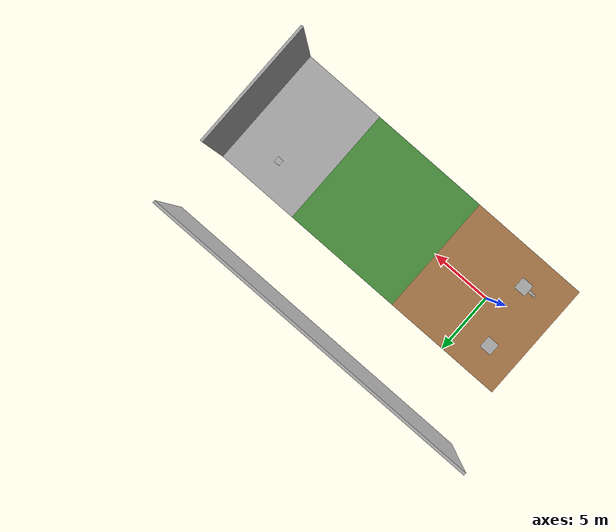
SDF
<sdf version="1.6">
 <world name="imav_world">
  <light name="sun" type="directional">
   <pose>0 10 0 0 0 -1.57079632679</pose>
   <diffuse>0.8 0.8 0.8 1</diffuse>
   <specular>0.2 0.2 0.2 1</specular>
   <attenuation>
    <range>1000</range>
    <constant>0.9</constant>
    <linear>0.01</linear>
    <quadratic>0.001</quadratic>
   </attenuation>
   <direction>-0.5 0.1 -0.9</direction>
  </light>
  <spherical_coordinates>
   <surface_model>EARTH_WGS84</surface_model>
   <latitude_deg>51.9906</latitude_deg>
   <longitude_deg>4.37679</longitude_deg>
   <elevation>0</elevation>
   <heading_deg>180</heading_deg>
  </spherical_coordinates>
  <physics type="ode">
   <max_step_size>0.001</max_step_size>
   <real_time_update_rate>0</real_time_update_rate>
  </physics>
  <gravity>0 0 -9.8</gravity>
  <scene>
   <ambient>0.4 0.4 0.4 1</ambient>
   <background>0.7 0.7 0.7 1</background>
   <sky><clouds><speed>12</speed></clouds></sky>
   <shadows>0</shadows>
   <grid>0</grid>
  </scene>
  <model name="takoff_landing_zone">
   <static>1</static>
   <link name="link">
    <collision name="collision">
     <geometry><plane><normal>0 0 1</normal><size>10 10</size></plane></geometry>
     <surface><friction><ode><mu>100</mu><mu2>50</mu2></ode></friction></surface>
    </collision>
    <visual name="visual">
     <cast_shadows>0</cast_shadows>
     <geometry><plane><normal>0 0 1</normal><size>10 10</size></plane></geometry>
     <material><script><name>Kitchen/WoodFloor</name></script></material>
    </visual>
    <velocity_decay><linear>0</linear><angular>0</angular></velocity_decay>
   </link>
  </model>
  <model name="obstacle_zone">
   <static>1</static>
   <pose>10.0 0.0 0 0 0 0</pose>
   <link name="link">
    <collision name="collision">
     <geometry><plane><normal>0 0 1</normal><size>10 10</size></plane></geometry>
     <surface><friction><ode><mu>100</mu><mu2>50</mu2></ode></friction></surface>
    </collision>
    <visual name="visual">
     <cast_shadows>0</cast_shadows>
     <geometry><plane><normal>0 0 1</normal><size>10 10</size></plane></geometry>
     <material><script><name>Kitchen/Grass</name></script></material>
    </visual>
    <velocity_decay><linear>0</linear><angular>0</angular></velocity_decay>
   </link>
  </model>
  <model name="target_zone">
   <static>1</static>
   <pose>18.5 0.0 0 0 0 0</pose>
   <link name="link">
    <collision name="collision">
     <geometry><plane><normal>0 0 1</normal><size>7 10</size></plane></geometry>
     <surface><friction><ode><mu>100</mu><mu2>50</mu2></ode></friction></surface>
    </collision>
    <visual name="visual">
     <cast_shadows>0</cast_shadows>
     <geometry><plane><normal>0 0 1</normal><size>7 10</size></plane></geometry>
     <material><script><name>Kitchen/CounterTop</name></script></material>
    </visual>
    <velocity_decay><linear>0</linear><angular>0</angular></velocity_decay>
   </link>
  </model>
  <model name="branded_wall">
   <static>true</static>
   <pose>8.25 10 2.5 0 0 0</pose>
   <link name="wall_link">
    <inertial><mass>10000</mass></inertial>
    <collision name="wall_brand_collision">
     <geometry><box><size>27 0.2 5.0</size></box></geometry>
     <surface><contact><collide_bitmask>0x02</collide_bitmask></contact></surface>
    </collision>
    <visual name="wall_brand_visual">
     <geometry><box><size>27 0.2 5.0</size></box></geometry>
     <material>
      <script><uri>model://../world/xacro/custom.material</uri><name>MathWorks_branding</name></script>
     </material>
    </visual>
   </link>
  </model>
  <model name="branded_wall">
   <static>true</static>
   <pose>22.0 0 2.5 0 0 -1.5708</pose>
   <link name="wall_link">
    <inertial><mass>10000</mass></inertial>
    <collision name="wall_imav_collision">
     <geometry><box><size>10 0.2 5.0</size></box></geometry>
     <surface><contact><collide_bitmask>0x02</collide_bitmask></contact></surface>
    </collision>
    <visual name="wall_imav_visual">
     <geometry><box><size>10 0.2 5.0</size></box></geometry>
     <material>
      <script><uri>model://../world/xacro/custom.material</uri><name>imav_branding</name></script>
     </material>
    </visual>
   </link>
  </model>
  <model name="helipad_static">
   <static>true</static>
   <link name="helipad_link">
    <pose>-2.5 2.5 0.1 0 0 0</pose>
    <inertial><mass>10</mass></inertial>
    <collision name="wall_brand_collision">
     <geometry><box><size>1 1 0.01</size></box></geometry>
     <surface><contact><collide_bitmask>0x02</collide_bitmask></contact></surface>
    </collision>
    <visual name="helipad_visual">
     <geometry><box><size>1 1 0.01</size></box></geometry>
     <material><script><uri>model://../world/xacro/custom.material</uri><name>Helipad</name></script></material>
    </visual>
   </link>
  </model>
  <model name="helipad_mobile">
   <pose>-2.5 -2.5 0.1 0 0 0</pose>
   <joint name="helipad_fix0" type="fixed"><parent>world</parent><child>base</child></joint>
   <link name="base">
    <collision name="collision"><geometry><box><size>0.2 0.2 0.2</size></box></geometry></collision>
    <visual name="visual"><geometry><box><size>0.2 0.2 0.2</size></box></geometry></visual>
   </link>
   <joint name="helipad_joint" type="revolute">
    <pose>-0.5 0 0 0 0 0</pose>
    <parent>base</parent>
    <child>arm</child>
    <axis><xyz>0 0 1</xyz></axis>
    <physics><ode><velocity>1</velocity><max_force>1000</max_force></ode></physics>
   </joint>
   <link name="arm">
    <pose>0.5 0 0.095 0 0 0</pose>
    <collision name="collision"><geometry><box><size>1 0.2 0.01</size></box></geometry></collision>
    <visual name="visual"><geometry><box><size>1 0.2 0.01</size></box></geometry></visual>
   </link>
   <joint name="helipad_fix1" type="fixed"><parent>arm</parent><child>helipad_link</child></joint>
   <link name="helipad_link">
    <pose>1 0 0.1 0 0 0</pose>
    <inertial><mass>10</mass></inertial>
    <collision name="wall_brand_collision">
     <geometry><box><size>1 1 0.01</size></box></geometry>
     <surface><contact><collide_bitmask>0x02</collide_bitmask></contact></surface>
    </collision>
    <visual name="helipad_visual">
     <geometry><box><size>1 1 0.01</size></box></geometry>
     <material><script><uri>model://../world/xacro/custom.material</uri><name>Helipad</name></script></material>
    </visual>
   </link>
  </model>
  <model name="QR">
   <static>true</static>
   <link name="QR1_link">
    <pose>18.5 2.5 0.1 0 0 0</pose>
    <inertial><mass>10</mass></inertial>
    <collision name="qr_collision">
     <geometry><box><size>0.5 0.5 0.01</size></box></geometry>
     <surface><contact><collide_bitmask>0x02</collide_bitmask></contact></surface>
    </collision>
    <visual name="qr_visual">
     <geometry><box><size>0.5 0.5 0.01</size></box></geometry>
     <material><script><uri>file://../world/xacro/custom.material</uri><name>QR1</name></script></material>
    </visual>
   </link>
  </model>
 </world>
</sdf>
